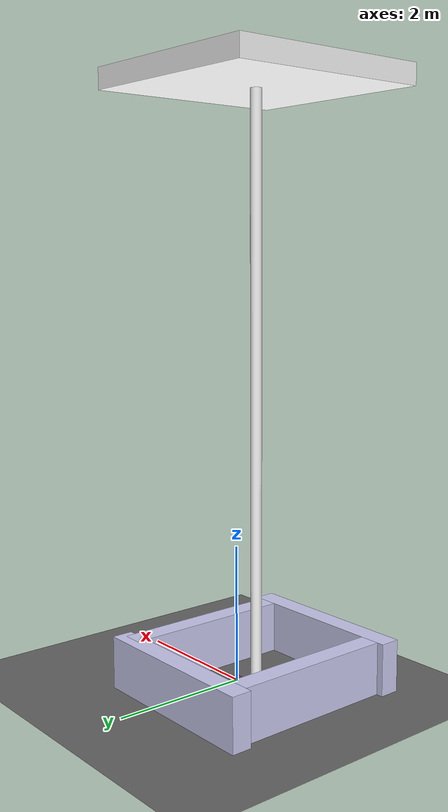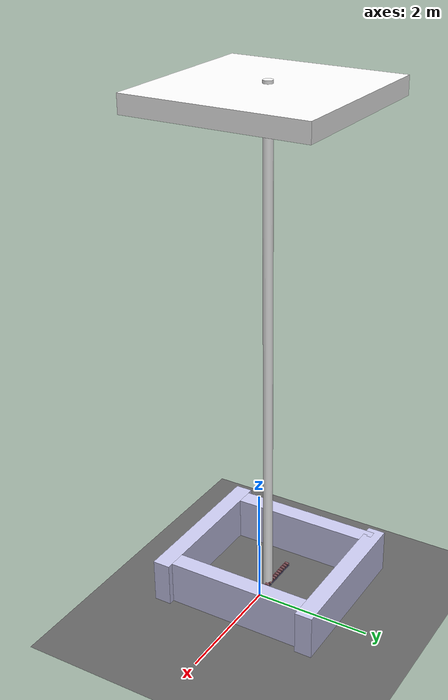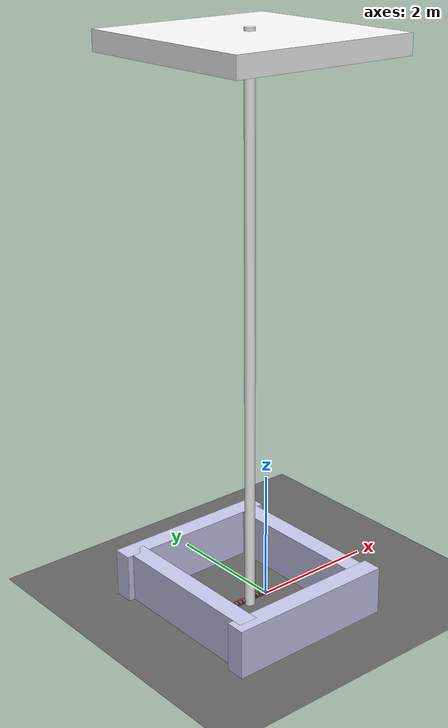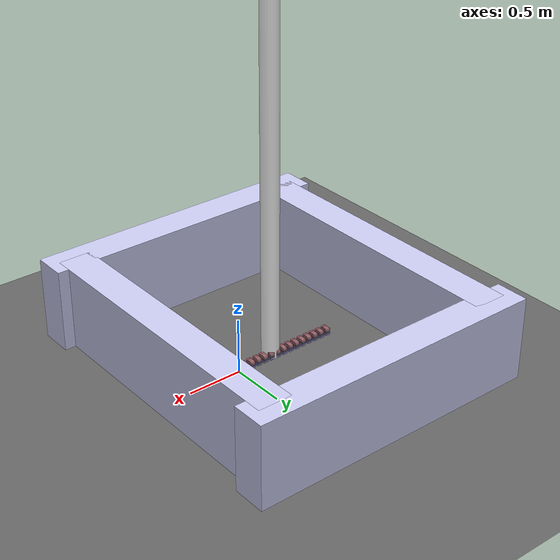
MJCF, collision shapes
<!-- Copyright 2024 Bongsub Song
 doorebong@gmail.com
 -->

 <mujoco model="Horcrux v2 with flat plane">
    <include file="horcrux_p.xml"/>
    <option timestep="0.005"/>
    <size memory="512M"/>

    <!-- up pipe defaults -->
    <default>
        <default class="pvc-visual">
          <geom group="2" type="mesh" contype="0" conaffinity="0"/>
        </default>
        <default class="pvc-collision">
          <geom group="3" type="mesh" priority="2"/>
        </default>
    </default>

    <asset>
        <texture builtin="gradient" height="100" rgb1="1 1 1" rgb2="0 0 0" type="skybox" width="100"/>
        <texture builtin="flat" height="1278" mark="cross" markrgb="1 1 1" name="texgeom" random="0.01" rgb1="0.8 0.6 0.4" rgb2="0.8 0.6 0.4" type="cube" width="127"/>
        <texture builtin="checker" height="100" name="texplane" rgb1="0 0 0" rgb2="0.8 0.8 0.8" type="2d" width="100"/>
        <material name="MatPlane" reflectance="0" shininess="0.1" specular="1" texrepeat="30 30" texture="texplane"/>
        <material name="geom" texture="texgeom" texuniform="true"/>
        <material name="capsule" texture="texgeom" texuniform="true" rgba=".4 .9 .6 1" />
        <material name="ellipsoid" texture="texgeom" texuniform="true" rgba=".4 .6 .9 1" />
        <material name="box" texture="texgeom" texuniform="true" rgba=".4 .9 .9 1" />
        <material name="cylinder" texture="texgeom" texuniform="true" rgba=".8 .6 .8 1" />
        <material name="sphere" texture="texgeom" texuniform="true" rgba=".9 .1 .1 1" />

        <mesh file="./decomposing/PVC_pipe.obj"/>
        <mesh file="./decomposing/PVC_pipe_collision_0.obj"/>
        <mesh file="./decomposing/PVC_pipe_collision_1.obj"/>
        <mesh file="./decomposing/PVC_pipe_collision_2.obj"/>
        <mesh file="./decomposing/PVC_pipe_collision_3.obj"/>
        <mesh file="./decomposing/PVC_pipe_collision_4.obj"/>
        <mesh file="./decomposing/PVC_pipe_collision_5.obj"/>
        <mesh file="./decomposing/PVC_pipe_collision_6.obj"/>
        <mesh file="./decomposing/PVC_pipe_collision_7.obj"/>
        <mesh file="./decomposing/PVC_pipe_collision_8.obj"/>
        <mesh file="./decomposing/PVC_pipe_collision_9.obj"/>
        <mesh file="./decomposing/PVC_pipe_collision_10.obj"/>
    </asset>

<worldbody>
    <geom name="floor" type="plane" size="30 30 .5" priority="2" friction="0.65 0.015 0.01" material="MatPlane" />

    <geom name="wall1" type="box" condim="1" size="1.35 0.15 0.5" rgba="0.8 0.8 0.95 0.6" pos="-0.4 1.35 0.25"/>
    <geom name="wall2" type="box" condim="1" size="1.35 0.15 0.5" rgba="0.8 0.8 0.95 0.6" pos="-0.4 -1.35 0.25"/>
    <geom name="wall3" type="box" condim="1" size="0.15 1.35 0.5" rgba="0.8 0.8 0.95 0.6" pos="0.7 0 0.25"/>
    <geom name="wall4" type="box" condim="1" size="0.15 1.35 0.5" rgba="0.8 0.8 0.95 0.6" pos="-1.5 0 0.25"/>

    <geom name="pipe4climb" type="cylinder" size="0.08 4.5" priority="2" friction="1.2 0.01 0.005" rgba="1 1 1 1" pos="-0.37 -0.05 4.2"/>
    <geom name="pipe4climbtop" type="box" condim="1" size="1.5 1.5 0.15" rgba="1 1 1 1" pos="-0.35 -0.05 8.5"/>

    <body>
        <camera name="pipe_climbing_watcher" mode="fixed" fovy="105" pos="-0.45 1 1.5" euler="-45 0 180"/>
    </body>
</worldbody>

</mujoco>

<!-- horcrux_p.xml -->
<!-- Copyright 2024 Bongsub Song
 doorebong@gmail.com
 -->

<mujoco model="Horcrux v2 body">
<!--    DGIST BRM Horcrux snake robot
        DOF : 20
        Actuators : 14
        Sensors : 30

        각 링크에 FSR 센서가 장착된 뱀로봇 V2 입니다.
    -->
<asset>
<!-- 메시 파일 불러오기 -->
    <mesh name="link_collision" file="./assets/link_collision_mesh.STL"/>

<!-- HEAD 링크 obj 설정 파일들 -->
    <material name="black_medium_gloss_plastic" specular="1.0" shininess="0.099901085" rgba="0.101961 0.101961 0.101961 1.000000"/>
    <material name="black_spray_paint" specular="1.0" shininess="0.001136835" rgba="0.058824 0.058824 0.058824 1.000000"/>
    <material name="brushed_nickel" specular="1.0" shininess="0.006954886" rgba="1.000000 0.960784 0.890196 1.000000"/>
    <material name="color" specular="1.0" shininess="0.005212761999999999" rgba="0.000000 0.368627 0.094118 1.000000"/>
    <material name="color-2" specular="1.0" shininess="0.005212761999999999" rgba="1.000000 1.000000 1.000000 1.000000"/>
    <material name="color-3" specular="1.0" shininess="0.005212761999999999" rgba="0.250980 0.250980 0.250980 1.000000"/>
    <material name="color-4" specular="1.0" shininess="0.005212761999999999" rgba="0.870588 0.709804 0.498039 1.000000"/>
    <material name="color-5" specular="1.0" shininess="0.005212761999999999" rgba="0.749020 0.749020 0.749020 1.000000"/>
    <material name="color-6" specular="1.0" shininess="0.005212761999999999" rgba="0.470588 0.431373 0.274510 1.000000"/>
    <material name="color-7" specular="1.0" shininess="0.005212761999999999" rgba="0.247059 0.247059 0.247059 1.000000"/>
    <material name="color-8" specular="1.0" shininess="0.005212761999999999" rgba="0.929412 0.807843 0.764706 1.000000"/>
    <material name="color-9" specular="1.0" shininess="0.005212761999999999" rgba="0.960784 0.960784 0.964706 1.000000"/>
    <material name="frosted_plastic" specular="1.0" shininess="0.002559057" rgba="0.576471 0.929412 1.000000 1.000000"/>
    <material name="frosted_plastic-2" specular="1.0" shininess="0.002559057" rgba="0.576471 0.929412 1.000000 1.000000"/>
    <material name="frosted_plastic-3" specular="1.0" shininess="0.002559057" rgba="0.576471 0.929412 1.000000 1.000000"/>
    <material name="light_grey_low_gloss_plastic" specular="1.0" shininess="0.001357886" rgba="0.498039 0.498039 0.498039 1.000000"/>
    <material name="matte_rubber" specular="1.0" shininess="0.0012430000000000002" rgba="0.094118 0.078431 0.078431 1.000000"/>
    <material name="satin_finish_aluminum" specular="1.0" shininess="0.003414631" rgba="0.866667 0.909804 1.000000 1.000000"/>
    <material name="satin_finish_aluminum_(Cosmetic_Thread)" specular="1.0" shininess="0.003414631" rgba="0.866667 0.909804 1.000000 1.000000"/>

    <mesh file="./assets/head_0.obj"/>
    <mesh file="./assets/head_1.obj"/>
    <mesh file="./assets/head_2.obj"/>
    <mesh file="./assets/head_3.obj"/>
    <mesh file="./assets/head_4.obj"/>
    <mesh file="./assets/head_5.obj"/>
    <mesh file="./assets/head_6.obj"/>
    <mesh file="./assets/head_7.obj"/>
    <mesh file="./assets/head_8.obj"/>
    <mesh file="./assets/head_9.obj"/>
    <mesh file="./assets/head_10.obj"/>
    <mesh file="./assets/head_11.obj"/>
    <mesh file="./assets/head_12.obj"/>
    <mesh file="./assets/head_13.obj"/>
    <mesh file="./assets/head_14.obj"/>
    <mesh file="./assets/head_15.obj"/>
    <mesh file="./assets/head_16.obj"/>
    <mesh file="./assets/head_17.obj"/>
    <mesh file="./assets/head_18.obj"/>

<!-- Verical 링크 obj 설정 파일들 -->
    <material name="v-color" specular="1.0" shininess="0.005212761999999999" rgba="0.247059 0.247059 0.247059 1.000000"/>
    <material name="v-color-10" specular="1.0" shininess="0.005212761999999999" rgba="0.749020 0.749020 0.749020 1.000000"/>
    <material name="v-color-2" specular="1.0" shininess="0.005212761999999999" rgba="0.929412 0.807843 0.764706 1.000000"/>
    <material name="v-color-3" specular="1.0" shininess="0.005212761999999999" rgba="0.960784 0.960784 0.964706 1.000000"/>
    <material name="v-color-4" specular="1.0" shininess="0.005212761999999999" rgba="0.117647 0.294118 0.031373 1.000000"/>
    <material name="v-color-5" specular="1.0" shininess="0.005212761999999999" rgba="0.470588 0.431373 0.274510 1.000000"/>
    <material name="v-color-7" specular="1.0" shininess="0.005212761999999999" rgba="1.000000 1.000000 1.000000 1.000000"/>
    <material name="v-color-8" specular="1.0" shininess="0.005212761999999999" rgba="0.250980 0.250980 0.250980 1.000000"/>
    <material name="v-color-9" specular="1.0" shininess="0.005212761999999999" rgba="0.870588 0.709804 0.498039 1.000000"/>
    <material name="glossy_rubber" specular="1.0" shininess="0.005212761999999999" rgba="0.298039 0.298039 0.298039 1.000000"/>

    <mesh file="./assets/v-link_0.obj"/>
    <mesh file="./assets/v-link_1.obj"/>
    <mesh file="./assets/v-link_2.obj"/>
    <mesh file="./assets/v-link_3.obj"/>
    <mesh file="./assets/v-link_4.obj"/>
    <mesh file="./assets/v-link_5.obj"/>
    <mesh file="./assets/v-link_6.obj"/>
    <mesh file="./assets/v-link_7.obj"/>
    <mesh file="./assets/v-link_8.obj"/>
    <mesh file="./assets/v-link_9.obj"/>
    <mesh file="./assets/v-link_10.obj"/>
    <mesh file="./assets/v-link_11.obj"/>
    <mesh file="./assets/v-link_12.obj"/>
    <mesh file="./assets/v-link_13.obj"/>
    <mesh file="./assets/v-link_14.obj"/>
    <mesh file="./assets/v-link_15.obj"/>
    <mesh file="./assets/v-link_16.obj"/>
    <mesh file="./assets/v-link_17.obj"/>
    <mesh file="./assets/v-link_18.obj"/>

<!-- Horizon 링크 obj 설정 파일들 -->
    <material name="black_medium_gloss_plastic.001" specular="1.0" shininess="0.099901085" rgba="0.101961 0.101961 0.101961 1.000000"/>
    <material name="black_spray_paint.001" specular="1.0" shininess="0.001136835" rgba="0.058824 0.058824 0.058824 1.000000"/>
    <material name="brushed_nickel.001" specular="1.0" shininess="0.006954886" rgba="1.000000 0.960784 0.890196 1.000000"/>
    <material name="color-2.001" specular="1.0" shininess="0.005212761999999999" rgba="1.000000 1.000000 1.000000 1.000000"/>
    <material name="color-3.001" specular="1.0" shininess="0.005212761999999999" rgba="0.250980 0.250980 0.250980 1.000000"/>
    <material name="color-4.001" specular="1.0" shininess="0.005212761999999999" rgba="0.870588 0.709804 0.498039 1.000000"/>
    <material name="color-5.001" specular="1.0" shininess="0.005212761999999999" rgba="0.749020 0.749020 0.749020 1.000000"/>
    <material name="color-6.001" specular="1.0" shininess="0.005212761999999999" rgba="0.470588 0.431373 0.274510 1.000000"/>
    <material name="color-7.001" specular="1.0" shininess="0.005212761999999999" rgba="0.247059 0.247059 0.247059 1.000000"/>
    <material name="color-8.001" specular="1.0" shininess="0.005212761999999999" rgba="0.929412 0.807843 0.764706 1.000000"/>
    <material name="color-9.001" specular="1.0" shininess="0.005212761999999999" rgba="0.960784 0.960784 0.964706 1.000000"/>
    <material name="color.001" specular="1.0" shininess="0.005212761999999999" rgba="0.117647 0.294118 0.031373 1.000000"/>
    <material name="frosted_plastic-2.001" specular="1.0" shininess="0.002559057" rgba="0.576471 0.929412 1.000000 1.000000"/>
    <material name="frosted_plastic-3.001" specular="1.0" shininess="0.002559057" rgba="0.576471 0.929412 1.000000 1.000000"/>
    <material name="frosted_plastic.001" specular="1.0" shininess="0.002559057" rgba="0.576471 0.929412 1.000000 1.000000"/>
    <material name="glossy_rubber.001" specular="1.0" shininess="0.005212761999999999" rgba="0.298039 0.298039 0.298039 1.000000"/>
    <material name="light_grey_low_gloss_plastic.001" specular="1.0" shininess="0.001357886" rgba="0.498039 0.498039 0.498039 1.000000"/>
    <material name="satin_finish_aluminum.001" specular="1.0" shininess="0.003414631" rgba="0.866667 0.909804 1.000000 1.000000"/>
    <material name="satin_finish_aluminum_(Cosmetic_Thread).001" specular="1.0" shininess="0.003414631" rgba="0.866667 0.909804 1.000000 1.000000"/>

    <mesh file="./assets/h-link_0.obj"/>
    <mesh file="./assets/h-link_1.obj"/>
    <mesh file="./assets/h-link_2.obj"/>
    <mesh file="./assets/h-link_3.obj"/>
    <mesh file="./assets/h-link_4.obj"/>
    <mesh file="./assets/h-link_5.obj"/>
    <mesh file="./assets/h-link_6.obj"/>
    <mesh file="./assets/h-link_7.obj"/>
    <mesh file="./assets/h-link_8.obj"/>
    <mesh file="./assets/h-link_9.obj"/>
    <mesh file="./assets/h-link_10.obj"/>
    <mesh file="./assets/h-link_11.obj"/>
    <mesh file="./assets/h-link_12.obj"/>
    <mesh file="./assets/h-link_13.obj"/>
    <mesh file="./assets/h-link_14.obj"/>
    <mesh file="./assets/h-link_15.obj"/>
    <mesh file="./assets/h-link_16.obj"/>
    <mesh file="./assets/h-link_17.obj"/>
    <mesh file="./assets/h-link_18.obj"/>
</asset>

<!-- 디폴트 설정 -->
<default>
    <!-- Robotis XM430-W250 -->
    <motor ctrlrange="-3 3" ctrllimited="true"/>

    <default class="joint_defaults">
        <joint type="hinge" pos="0.0685 0 0" limited="true" range="-45 45" damping="0.13" armature="0.01" />
    </default>

    <default class="collision-mesh">
        <geom group="3" type="mesh" mesh="link_collision" mass="0.165" condim="4" rgba="0.5 0.5 0.5 0.1" priority="1" friction="0.7 0.015 0.001" euler="90 90 0"/>
    </default>

    <default class="visual">
        <geom group="2" type="mesh" mass="0" contype="0" conaffinity="0"/>
    </default>

    <default class="collision">
        <geom group="3" type="mesh"/>
    </default>
</default>

<visual>
    <map force="0.1" zfar="30"/>
    <rgba haze="0.15 0.25 0.35 1"/>
    <quality shadowsize="4096"/>
    <global offwidth="1280" offheight="1280"/>
</visual>

<!-- 바디 정의 시작 -->
<worldbody>

<body>
    <camera name="ceiling" mode="fixed" fovy="48" pos="-0.5 0 3.5" euler="0 0 0"/>
</body>

<body name="link1" pos="0 0 0.035" euler="0 0 0">
    <freejoint name="root"/>
    <site name="s_tool" pos="0.05 0 0.0" euler="0 0 0" rgba="0.2 0.9 0.3 1"/>
    <site name="s_link1_top" type="box" size="0.021 0.038 0.014" pos="0.016 0 0.018" rgba="0.8 0.1 0.2 0.3"/>
    <site name="s_link1_bot" type="box" size="0.021 0.038 0.014" pos="0.016 0 -0.018" rgba="0.2 0.1 0.8 0.3"/>
    <geom name="collision-link1" class="collision-mesh"/>
    <geom mesh="head_0"  pos="0 0 -0.03125" euler="0 90 90" material="matte_rubber" class="visual"/>
    <geom mesh="head_1"  pos="0 0 -0.03125" euler="0 90 90" material="color-9" class="visual"/>
    <geom mesh="head_2"  pos="0 0 -0.03125" euler="0 90 90" material="color-8" class="visual"/>
    <geom mesh="head_3"  pos="0 0 -0.03125" euler="0 90 90" material="color-7" class="visual"/>
    <geom mesh="head_4"  pos="0 0 -0.03125" euler="0 90 90" material="color-6" class="visual"/>
    <geom mesh="head_5"  pos="0 0 -0.03125" euler="0 90 90" material="color-5" class="visual"/>
    <geom mesh="head_6"  pos="0 0 -0.03125" euler="0 90 90" material="color-4" class="visual"/>
    <geom mesh="head_7"  pos="0 0 -0.03125" euler="0 90 90" material="color-3" class="visual"/>
    <geom mesh="head_8"  pos="0 0 -0.03125" euler="0 90 90" material="color-2" class="visual"/>
    <geom mesh="head_9"  pos="0 0 -0.03125" euler="0 90 90" material="color" class="visual"/>
    <geom mesh="head_10" pos="0 0 -0.03125" euler="0 90 90" material="light_grey_low_gloss_plastic" class="visual"/>
    <geom mesh="head_11" pos="0 0 -0.03125" euler="0 90 90" material="frosted_plastic-3" class="visual"/>
    <geom mesh="head_12" pos="0 0 -0.03125" euler="0 90 90" material="frosted_plastic-2" class="visual"/>
    <geom mesh="head_13" pos="0 0 -0.03125" euler="0 90 90" material="frosted_plastic" class="visual"/>
    <geom mesh="head_14" pos="0 0 -0.03125" euler="0 90 90" material="satin_finish_aluminum_(Cosmetic_Thread)" class="visual"/>
    <geom mesh="head_15" pos="0 0 -0.03125" euler="0 90 90" material="satin_finish_aluminum" class="visual"/>
    <geom mesh="head_16" pos="0 0 -0.03125" euler="0 90 90" material="black_medium_gloss_plastic" class="visual"/>
    <geom mesh="head_17" pos="0 0 -0.03125" euler="0 90 90" material="brushed_nickel" class="visual"/>
    <geom mesh="head_18" pos="0 0 -0.03125" euler="0 90 90" material="black_spray_paint" class="visual"/>
    <body name="link2" pos="-0.0685 0 0" euler="0 0 0">
        <joint class="joint_defaults" name="joint1" axis="0 1 0"/>
        <site name="s_link2_top" type="box" size="0.021 0.038 0.014" pos="0.016 0 0.018" rgba="0.8 0.1 0.2 0.3"/>
        <site name="s_link2_bot" type="box" size="0.021 0.038 0.014" pos="0.016 0 -0.018" rgba="0.2 0.1 0.8 0.3"/>
        <geom name="collision-link2" class="collision-mesh"/>
        <geom mesh="h-link_0"  pos="0 0 -0.03125" euler="0 90 90" material="glossy_rubber" class="visual"/>
        <geom mesh="h-link_1"  pos="0 0 -0.03125" euler="0 90 90" material="v-color-10" class="visual"/>
        <geom mesh="h-link_2"  pos="0 0 -0.03125" euler="0 90 90" material="v-color-9" class="visual"/>
        <geom mesh="h-link_3"  pos="0 0 -0.03125" euler="0 90 90" material="v-color-8" class="visual"/>
        <geom mesh="h-link_4"  pos="0 0 -0.03125" euler="0 90 90" material="v-color-7" class="visual"/>
        <geom mesh="h-link_5"  pos="0 0 -0.03125" euler="0 90 90" material="v-color-5" class="visual"/>
        <geom mesh="h-link_6"  pos="0 0 -0.03125" euler="0 90 90" material="v-color-4" class="visual"/>
        <geom mesh="h-link_7"  pos="0 0 -0.03125" euler="0 90 90" material="v-color-3" class="visual"/>
        <geom mesh="h-link_8"  pos="0 0 -0.03125" euler="0 90 90" material="v-color-2" class="visual"/>
        <geom mesh="h-link_9"  pos="0 0 -0.03125" euler="0 90 90" material="v-color" class="visual"/>
        <geom mesh="h-link_10" pos="0 0 -0.03125" euler="0 90 90" material="light_grey_low_gloss_plastic" class="visual"/>
        <geom mesh="h-link_11" pos="0 0 -0.03125" euler="0 90 90" material="frosted_plastic-3" class="visual"/>
        <geom mesh="h-link_12" pos="0 0 -0.03125" euler="0 90 90" material="frosted_plastic-2" class="visual"/>
        <geom mesh="h-link_13" pos="0 0 -0.03125" euler="0 90 90" material="frosted_plastic" class="visual"/>
        <geom mesh="h-link_14" pos="0 0 -0.03125" euler="0 90 90" material="satin_finish_aluminum_(Cosmetic_Thread)" class="visual"/>
        <geom mesh="h-link_15" pos="0 0 -0.03125" euler="0 90 90" material="satin_finish_aluminum" class="visual"/>
        <geom mesh="h-link_16" pos="0 0 -0.03125" euler="0 90 90" material="black_medium_gloss_plastic" class="visual"/>
        <geom mesh="h-link_17" pos="0 0 -0.03125" euler="0 90 90" material="brushed_nickel" class="visual"/>
        <geom mesh="h-link_18" pos="0 0 -0.03125" euler="0 90 90" material="black_spray_paint" class="visual"/>
        <body name="link3" pos="-0.0685 0 0" euler="0 0 0">
            <joint class="joint_defaults" name="joint2" axis="0 0 1"/>
            <site name="s_link3_top" type="box" size="0.021 0.038 0.014" pos="0.016 0 0.018" rgba="0.8 0.1 0.2 0.3"/>
            <site name="s_link3_bot" type="box" size="0.021 0.038 0.014" pos="0.016 0 -0.018" rgba="0.2 0.1 0.8 0.3"/>
            <geom name="collision-link3" class="collision-mesh"/>
            <geom mesh="v-link_0"  pos="0 0 -0.03125" euler="0 90 90" material="glossy_rubber" class="visual"/>
            <geom mesh="v-link_1"  pos="0 0 -0.03125" euler="0 90 90" material="v-color-10" class="visual"/>
            <geom mesh="v-link_2"  pos="0 0 -0.03125" euler="0 90 90" material="v-color-9" class="visual"/>
            <geom mesh="v-link_3"  pos="0 0 -0.03125" euler="0 90 90" material="v-color-8" class="visual"/>
            <geom mesh="v-link_4"  pos="0 0 -0.03125" euler="0 90 90" material="v-color-7" class="visual"/>
            <geom mesh="v-link_5"  pos="0 0 -0.03125" euler="0 90 90" material="v-color-5" class="visual"/>
            <geom mesh="v-link_6"  pos="0 0 -0.03125" euler="0 90 90" material="v-color-4" class="visual"/>
            <geom mesh="v-link_7"  pos="0 0 -0.03125" euler="0 90 90" material="v-color-3" class="visual"/>
            <geom mesh="v-link_8"  pos="0 0 -0.03125" euler="0 90 90" material="v-color-2" class="visual"/>
            <geom mesh="v-link_9"  pos="0 0 -0.03125" euler="0 90 90" material="v-color" class="visual"/>
            <geom mesh="v-link_10" pos="0 0 -0.03125" euler="0 90 90" material="light_grey_low_gloss_plastic" class="visual"/>
            <geom mesh="v-link_11" pos="0 0 -0.03125" euler="0 90 90" material="frosted_plastic-3" class="visual"/>
            <geom mesh="v-link_12" pos="0 0 -0.03125" euler="0 90 90" material="frosted_plastic-2" class="visual"/>
            <geom mesh="v-link_13" pos="0 0 -0.03125" euler="0 90 90" material="frosted_plastic" class="visual"/>
            <geom mesh="v-link_14" pos="0 0 -0.03125" euler="0 90 90" material="satin_finish_aluminum_(Cosmetic_Thread)" class="visual"/>
            <geom mesh="v-link_15" pos="0 0 -0.03125" euler="0 90 90" material="satin_finish_aluminum" class="visual"/>
            <geom mesh="v-link_16" pos="0 0 -0.03125" euler="0 90 90" material="black_medium_gloss_plastic" class="visual"/>
            <geom mesh="v-link_17" pos="0 0 -0.03125" euler="0 90 90" material="brushed_nickel" class="visual"/>
            <geom mesh="v-link_18" pos="0 0 -0.03125" euler="0 90 90" material="black_spray_paint" class="visual"/>
            <body name="link4" pos="-0.0685 0 0" euler="0 0 0">
                <joint class="joint_defaults" name="joint3" axis="0 1 0"/>
                <site name="s_link4_top" type="box" size="0.021 0.038 0.014" pos="0.016 0 0.018" rgba="0.8 0.1 0.2 0.3"/>
                <site name="s_link4_bot" type="box" size="0.021 0.038 0.014" pos="0.016 0 -0.018" rgba="0.2 0.1 0.8 0.3"/>
                <geom name="collision-link4" class="collision-mesh"/>
                <geom mesh="h-link_0"  pos="0 0 -0.03125" euler="0 90 90" material="glossy_rubber" class="visual"/>
                <geom mesh="h-link_1"  pos="0 0 -0.03125" euler="0 90 90" material="v-color-10" class="visual"/>
                <geom mesh="h-link_2"  pos="0 0 -0.03125" euler="0 90 90" material="v-color-9" class="visual"/>
                <geom mesh="h-link_3"  pos="0 0 -0.03125" euler="0 90 90" material="v-color-8" class="visual"/>
                <geom mesh="h-link_4"  pos="0 0 -0.03125" euler="0 90 90" material="v-color-7" class="visual"/>
                <geom mesh="h-link_5"  pos="0 0 -0.03125" euler="0 90 90" material="v-color-5" class="visual"/>
                <geom mesh="h-link_6"  pos="0 0 -0.03125" euler="0 90 90" material="v-color-4" class="visual"/>
                <geom mesh="h-link_7"  pos="0 0 -0.03125" euler="0 90 90" material="v-color-3" class="visual"/>
                <geom mesh="h-link_8"  pos="0 0 -0.03125" euler="0 90 90" material="v-color-2" class="visual"/>
                <geom mesh="h-link_9"  pos="0 0 -0.03125" euler="0 90 90" material="v-color" class="visual"/>
                <geom mesh="h-link_10" pos="0 0 -0.03125" euler="0 90 90" material="light_grey_low_gloss_plastic" class="visual"/>
                <geom mesh="h-link_11" pos="0 0 -0.03125" euler="0 90 90" material="frosted_plastic-3" class="visual"/>
                <geom mesh="h-link_12" pos="0 0 -0.03125" euler="0 90 90" material="frosted_plastic-2" class="visual"/>
                <geom mesh="h-link_13" pos="0 0 -0.03125" euler="0 90 90" material="frosted_plastic" class="visual"/>
                <geom mesh="h-link_14" pos="0 0 -0.03125" euler="0 90 90" material="satin_finish_aluminum_(Cosmetic_Thread)" class="visual"/>
                <geom mesh="h-link_15" pos="0 0 -0.03125" euler="0 90 90" material="satin_finish_aluminum" class="visual"/>
                <geom mesh="h-link_16" pos="0 0 -0.03125" euler="0 90 90" material="black_medium_gloss_plastic" class="visual"/>
                <geom mesh="h-link_17" pos="0 0 -0.03125" euler="0 90 90" material="brushed_nickel" class="visual"/>
                <geom mesh="h-link_18" pos="0 0 -0.03125" euler="0 90 90" material="black_spray_paint" class="visual"/>
                <body name="link5" pos="-0.0685 0 0" euler="0 0 0">
                    <joint class="joint_defaults" name="joint4" axis="0 0 1"/>
                    <site name="s_link5_top" type="box" size="0.021 0.038 0.014" pos="0.016 0 0.018" rgba="0.8 0.1 0.2 0.3"/>
                    <site name="s_link5_bot" type="box" size="0.021 0.038 0.014" pos="0.016 0 -0.018" rgba="0.2 0.1 0.8 0.3"/>
                    <geom name="collision-link5" class="collision-mesh"/>
                    <geom mesh="v-link_0"  pos="0 0 -0.03125" euler="0 90 90" material="glossy_rubber" class="visual"/>
                    <geom mesh="v-link_1"  pos="0 0 -0.03125" euler="0 90 90" material="v-color-10" class="visual"/>
                    <geom mesh="v-link_2"  pos="0 0 -0.03125" euler="0 90 90" material="v-color-9" class="visual"/>
                    <geom mesh="v-link_3"  pos="0 0 -0.03125" euler="0 90 90" material="v-color-8" class="visual"/>
                    <geom mesh="v-link_4"  pos="0 0 -0.03125" euler="0 90 90" material="v-color-7" class="visual"/>
                    <geom mesh="v-link_5"  pos="0 0 -0.03125" euler="0 90 90" material="v-color-5" class="visual"/>
                    <geom mesh="v-link_6"  pos="0 0 -0.03125" euler="0 90 90" material="v-color-4" class="visual"/>
                    <geom mesh="v-link_7"  pos="0 0 -0.03125" euler="0 90 90" material="v-color-3" class="visual"/>
                    <geom mesh="v-link_8"  pos="0 0 -0.03125" euler="0 90 90" material="v-color-2" class="visual"/>
                    <geom mesh="v-link_9"  pos="0 0 -0.03125" euler="0 90 90" material="v-color" class="visual"/>
                    <geom mesh="v-link_10" pos="0 0 -0.03125" euler="0 90 90" material="light_grey_low_gloss_plastic" class="visual"/>
                    <geom mesh="v-link_11" pos="0 0 -0.03125" euler="0 90 90" material="frosted_plastic-3" class="visual"/>
                    <geom mesh="v-link_12" pos="0 0 -0.03125" euler="0 90 90" material="frosted_plastic-2" class="visual"/>
                    <geom mesh="v-link_13" pos="0 0 -0.03125" euler="0 90 90" material="frosted_plastic" class="visual"/>
                    <geom mesh="v-link_14" pos="0 0 -0.03125" euler="0 90 90" material="satin_finish_aluminum_(Cosmetic_Thread)" class="visual"/>
                    <geom mesh="v-link_15" pos="0 0 -0.03125" euler="0 90 90" material="satin_finish_aluminum" class="visual"/>
                    <geom mesh="v-link_16" pos="0 0 -0.03125" euler="0 90 90" material="black_medium_gloss_plastic" class="visual"/>
                    <geom mesh="v-link_17" pos="0 0 -0.03125" euler="0 90 90" material="brushed_nickel" class="visual"/>
                    <geom mesh="v-link_18" pos="0 0 -0.03125" euler="0 90 90" material="black_spray_paint" class="visual"/>
                    <body name="link6" pos="-0.0685 0 0" euler="0 0 0">
                        <joint class="joint_defaults" name="joint5" axis="0 1 0"/>
                        <site name="s_link6_top" type="box" size="0.021 0.038 0.014" pos="0.016 0 0.018" rgba="0.8 0.1 0.2 0.3"/>
                        <site name="s_link6_bot" type="box" size="0.021 0.038 0.014" pos="0.016 0 -0.018" rgba="0.2 0.1 0.8 0.3"/>
                        <geom name="collision-link6" class="collision-mesh"/>
                        <geom mesh="h-link_0"  pos="0 0 -0.03125" euler="0 90 90" material="glossy_rubber" class="visual"/>
                        <geom mesh="h-link_1"  pos="0 0 -0.03125" euler="0 90 90" material="v-color-10" class="visual"/>
                        <geom mesh="h-link_2"  pos="0 0 -0.03125" euler="0 90 90" material="v-color-9" class="visual"/>
                        <geom mesh="h-link_3"  pos="0 0 -0.03125" euler="0 90 90" material="v-color-8" class="visual"/>
                        <geom mesh="h-link_4"  pos="0 0 -0.03125" euler="0 90 90" material="v-color-7" class="visual"/>
                        <geom mesh="h-link_5"  pos="0 0 -0.03125" euler="0 90 90" material="v-color-5" class="visual"/>
                        <geom mesh="h-link_6"  pos="0 0 -0.03125" euler="0 90 90" material="v-color-4" class="visual"/>
                        <geom mesh="h-link_7"  pos="0 0 -0.03125" euler="0 90 90" material="v-color-3" class="visual"/>
                        <geom mesh="h-link_8"  pos="0 0 -0.03125" euler="0 90 90" material="v-color-2" class="visual"/>
                        <geom mesh="h-link_9"  pos="0 0 -0.03125" euler="0 90 90" material="v-color" class="visual"/>
                        <geom mesh="h-link_10" pos="0 0 -0.03125" euler="0 90 90" material="light_grey_low_gloss_plastic" class="visual"/>
                        <geom mesh="h-link_11" pos="0 0 -0.03125" euler="0 90 90" material="frosted_plastic-3" class="visual"/>
                        <geom mesh="h-link_12" pos="0 0 -0.03125" euler="0 90 90" material="frosted_plastic-2" class="visual"/>
                        <geom mesh="h-link_13" pos="0 0 -0.03125" euler="0 90 90" material="frosted_plastic" class="visual"/>
                        <geom mesh="h-link_14" pos="0 0 -0.03125" euler="0 90 90" material="satin_finish_aluminum_(Cosmetic_Thread)" class="visual"/>
                        <geom mesh="h-link_15" pos="0 0 -0.03125" euler="0 90 90" material="satin_finish_aluminum" class="visual"/>
                        <geom mesh="h-link_16" pos="0 0 -0.03125" euler="0 90 90" material="black_medium_gloss_plastic" class="visual"/>
                        <geom mesh="h-link_17" pos="0 0 -0.03125" euler="0 90 90" material="brushed_nickel" class="visual"/>
                        <geom mesh="h-link_18" pos="0 0 -0.03125" euler="0 90 90" material="black_spray_paint" class="visual"/>
                        <body name="link7" pos="-0.0685 0 0" euler="0 0 0">
                            <joint class="joint_defaults" name="joint6" axis="0 0 1"/>
                            <site name="s_link7_top" type="box" size="0.021 0.038 0.014" pos="0.016 0 0.018" rgba="0.8 0.1 0.2 0.3"/>
                            <site name="s_link7_bot" type="box" size="0.021 0.038 0.014" pos="0.016 0 -0.018" rgba="0.2 0.1 0.8 0.3"/>
                            <geom name="collision-link7" class="collision-mesh"/>
                            <geom mesh="v-link_0"  pos="0 0 -0.03125" euler="0 90 90" material="glossy_rubber" class="visual"/>
                            <geom mesh="v-link_1"  pos="0 0 -0.03125" euler="0 90 90" material="v-color-10" class="visual"/>
                            <geom mesh="v-link_2"  pos="0 0 -0.03125" euler="0 90 90" material="v-color-9" class="visual"/>
                            <geom mesh="v-link_3"  pos="0 0 -0.03125" euler="0 90 90" material="v-color-8" class="visual"/>
                            <geom mesh="v-link_4"  pos="0 0 -0.03125" euler="0 90 90" material="v-color-7" class="visual"/>
                            <geom mesh="v-link_5"  pos="0 0 -0.03125" euler="0 90 90" material="v-color-5" class="visual"/>
                            <geom mesh="v-link_6"  pos="0 0 -0.03125" euler="0 90 90" material="v-color-4" class="visual"/>
                            <geom mesh="v-link_7"  pos="0 0 -0.03125" euler="0 90 90" material="v-color-3" class="visual"/>
                            <geom mesh="v-link_8"  pos="0 0 -0.03125" euler="0 90 90" material="v-color-2" class="visual"/>
                            <geom mesh="v-link_9"  pos="0 0 -0.03125" euler="0 90 90" material="v-color" class="visual"/>
                            <geom mesh="v-link_10" pos="0 0 -0.03125" euler="0 90 90" material="light_grey_low_gloss_plastic" class="visual"/>
                            <geom mesh="v-link_11" pos="0 0 -0.03125" euler="0 90 90" material="frosted_plastic-3" class="visual"/>
                            <geom mesh="v-link_12" pos="0 0 -0.03125" euler="0 90 90" material="frosted_plastic-2" class="visual"/>
                            <geom mesh="v-link_13" pos="0 0 -0.03125" euler="0 90 90" material="frosted_plastic" class="visual"/>
                            <geom mesh="v-link_14" pos="0 0 -0.03125" euler="0 90 90" material="satin_finish_aluminum_(Cosmetic_Thread)" class="visual"/>
                            <geom mesh="v-link_15" pos="0 0 -0.03125" euler="0 90 90" material="satin_finish_aluminum" class="visual"/>
                            <geom mesh="v-link_16" pos="0 0 -0.03125" euler="0 90 90" material="black_medium_gloss_plastic" class="visual"/>
                            <geom mesh="v-link_17" pos="0 0 -0.03125" euler="0 90 90" material="brushed_nickel" class="visual"/>
                            <geom mesh="v-link_18" pos="0 0 -0.03125" euler="0 90 90" material="black_spray_paint" class="visual"/>
                            <body name="link8" pos="-0.0685 0 0" euler="0 0 0">
                                <joint class="joint_defaults" name="joint7" axis="0 1 0"/>
                                <site name="s_link8_top" type="box" size="0.021 0.038 0.014" pos="0.016 0 0.018" rgba="0.8 0.1 0.2 0.3"/>
                                <site name="s_link8_bot" type="box" size="0.021 0.038 0.014" pos="0.016 0 -0.018" rgba="0.2 0.1 0.8 0.3"/>
                                <geom name="collision-link8" class="collision-mesh"/>
                                <geom mesh="h-link_0"  pos="0 0 -0.03125" euler="0 90 90" material="glossy_rubber" class="visual"/>
                                <geom mesh="h-link_1"  pos="0 0 -0.03125" euler="0 90 90" material="v-color-10" class="visual"/>
                                <geom mesh="h-link_2"  pos="0 0 -0.03125" euler="0 90 90" material="v-color-9" class="visual"/>
                                <geom mesh="h-link_3"  pos="0 0 -0.03125" euler="0 90 90" material="v-color-8" class="visual"/>
                                <geom mesh="h-link_4"  pos="0 0 -0.03125" euler="0 90 90" material="v-color-7" class="visual"/>
                                <geom mesh="h-link_5"  pos="0 0 -0.03125" euler="0 90 90" material="v-color-5" class="visual"/>
                                <geom mesh="h-link_6"  pos="0 0 -0.03125" euler="0 90 90" material="v-color-4" class="visual"/>
                                <geom mesh="h-link_7"  pos="0 0 -0.03125" euler="0 90 90" material="v-color-3" class="visual"/>
                                <geom mesh="h-link_8"  pos="0 0 -0.03125" euler="0 90 90" material="v-color-2" class="visual"/>
                                <geom mesh="h-link_9"  pos="0 0 -0.03125" euler="0 90 90" material="v-color" class="visual"/>
                                <geom mesh="h-link_10" pos="0 0 -0.03125" euler="0 90 90" material="light_grey_low_gloss_plastic" class="visual"/>
                                <geom mesh="h-link_11" pos="0 0 -0.03125" euler="0 90 90" material="frosted_plastic-3" class="visual"/>
                                <geom mesh="h-link_12" pos="0 0 -0.03125" euler="0 90 90" material="frosted_plastic-2" class="visual"/>
                                <geom mesh="h-link_13" pos="0 0 -0.03125" euler="0 90 90" material="frosted_plastic" class="visual"/>
                                <geom mesh="h-link_14" pos="0 0 -0.03125" euler="0 90 90" material="satin_finish_aluminum_(Cosmetic_Thread)" class="visual"/>
                                <geom mesh="h-link_15" pos="0 0 -0.03125" euler="0 90 90" material="satin_finish_aluminum" class="visual"/>
                                <geom mesh="h-link_16" pos="0 0 -0.03125" euler="0 90 90" material="black_medium_gloss_plastic" class="visual"/>
                                <geom mesh="h-link_17" pos="0 0 -0.03125" euler="0 90 90" material="brushed_nickel" class="visual"/>
                                <geom mesh="h-link_18" pos="0 0 -0.03125" euler="0 90 90" material="black_spray_paint" class="visual"/>
                                <body name="link9" pos="-0.0685 0 0" euler="0 0 0">
                                    <joint class="joint_defaults" name="joint8" axis="0 0 1"/>
                                    <site name="s_link9_top" type="box" size="0.021 0.038 0.014" pos="0.016 0 0.018" rgba="0.8 0.1 0.2 0.3"/>
                                    <site name="s_link9_bot" type="box" size="0.021 0.038 0.014" pos="0.016 0 -0.018" rgba="0.2 0.1 0.8 0.3"/>
                                    <geom name="collision-link9" class="collision-mesh"/>
                                    <geom mesh="v-link_0"  pos="0 0 -0.03125" euler="0 90 90" material="glossy_rubber" class="visual"/>
                                    <geom mesh="v-link_1"  pos="0 0 -0.03125" euler="0 90 90" material="v-color-10" class="visual"/>
                                    <geom mesh="v-link_2"  pos="0 0 -0.03125" euler="0 90 90" material="v-color-9" class="visual"/>
                                    <geom mesh="v-link_3"  pos="0 0 -0.03125" euler="0 90 90" material="v-color-8" class="visual"/>
                                    <geom mesh="v-link_4"  pos="0 0 -0.03125" euler="0 90 90" material="v-color-7" class="visual"/>
                                    <geom mesh="v-link_5"  pos="0 0 -0.03125" euler="0 90 90" material="v-color-5" class="visual"/>
                                    <geom mesh="v-link_6"  pos="0 0 -0.03125" euler="0 90 90" material="v-color-4" class="visual"/>
                                    <geom mesh="v-link_7"  pos="0 0 -0.03125" euler="0 90 90" material="v-color-3" class="visual"/>
                                    <geom mesh="v-link_8"  pos="0 0 -0.03125" euler="0 90 90" material="v-color-2" class="visual"/>
                                    <geom mesh="v-link_9"  pos="0 0 -0.03125" euler="0 90 90" material="v-color" class="visual"/>
                                    <geom mesh="v-link_10" pos="0 0 -0.03125" euler="0 90 90" material="light_grey_low_gloss_plastic" class="visual"/>
                                    <geom mesh="v-link_11" pos="0 0 -0.03125" euler="0 90 90" material="frosted_plastic-3" class="visual"/>
                                    <geom mesh="v-link_12" pos="0 0 -0.03125" euler="0 90 90" material="frosted_plastic-2" class="visual"/>
                                    <geom mesh="v-link_13" pos="0 0 -0.03125" euler="0 90 90" material="frosted_plastic" class="visual"/>
                                    <geom mesh="v-link_14" pos="0 0 -0.03125" euler="0 90 90" material="satin_finish_aluminum_(Cosmetic_Thread)" class="visual"/>
                                    <geom mesh="v-link_15" pos="0 0 -0.03125" euler="0 90 90" material="satin_finish_aluminum" class="visual"/>
                                    <geom mesh="v-link_16" pos="0 0 -0.03125" euler="0 90 90" material="black_medium_gloss_plastic" class="visual"/>
                                    <geom mesh="v-link_17" pos="0 0 -0.03125" euler="0 90 90" material="brushed_nickel" class="visual"/>
                                    <geom mesh="v-link_18" pos="0 0 -0.03125" euler="0 90 90" material="black_spray_paint" class="visual"/>
                                    <body name="link10" pos="-0.0685 0 0" euler="0 0 0">
                                        <joint class="joint_defaults" name="joint9" axis="0 1 0"/>
                                        <site name="s_link10_top" type="box" size="0.021 0.038 0.014" pos="0.016 0 0.018" rgba="0.8 0.1 0.2 0.3"/>
                                        <site name="s_link10_bot" type="box" size="0.021 0.038 0.014" pos="0.016 0 -0.018" rgba="0.2 0.1 0.8 0.3"/>
                                        <geom name="collision-link10" class="collision-mesh"/>
                                        <geom mesh="h-link_0"  pos="0 0 -0.03125" euler="0 90 90" material="glossy_rubber" class="visual"/>
                                        <geom mesh="h-link_1"  pos="0 0 -0.03125" euler="0 90 90" material="v-color-10" class="visual"/>
                                        <geom mesh="h-link_2"  pos="0 0 -0.03125" euler="0 90 90" material="v-color-9" class="visual"/>
                                        <geom mesh="h-link_3"  pos="0 0 -0.03125" euler="0 90 90" material="v-color-8" class="visual"/>
                                        <geom mesh="h-link_4"  pos="0 0 -0.03125" euler="0 90 90" material="v-color-7" class="visual"/>
                                        <geom mesh="h-link_5"  pos="0 0 -0.03125" euler="0 90 90" material="v-color-5" class="visual"/>
                                        <geom mesh="h-link_6"  pos="0 0 -0.03125" euler="0 90 90" material="v-color-4" class="visual"/>
                                        <geom mesh="h-link_7"  pos="0 0 -0.03125" euler="0 90 90" material="v-color-3" class="visual"/>
                                        <geom mesh="h-link_8"  pos="0 0 -0.03125" euler="0 90 90" material="v-color-2" class="visual"/>
                                        <geom mesh="h-link_9"  pos="0 0 -0.03125" euler="0 90 90" material="v-color" class="visual"/>
                                        <geom mesh="h-link_10" pos="0 0 -0.03125" euler="0 90 90" material="light_grey_low_gloss_plastic" class="visual"/>
                                        <geom mesh="h-link_11" pos="0 0 -0.03125" euler="0 90 90" material="frosted_plastic-3" class="visual"/>
                                        <geom mesh="h-link_12" pos="0 0 -0.03125" euler="0 90 90" material="frosted_plastic-2" class="visual"/>
                                        <geom mesh="h-link_13" pos="0 0 -0.03125" euler="0 90 90" material="frosted_plastic" class="visual"/>
                                        <geom mesh="h-link_14" pos="0 0 -0.03125" euler="0 90 90" material="satin_finish_aluminum_(Cosmetic_Thread)" class="visual"/>
                                        <geom mesh="h-link_15" pos="0 0 -0.03125" euler="0 90 90" material="satin_finish_aluminum" class="visual"/>
                                        <geom mesh="h-link_16" pos="0 0 -0.03125" euler="0 90 90" material="black_medium_gloss_plastic" class="visual"/>
                                        <geom mesh="h-link_17" pos="0 0 -0.03125" euler="0 90 90" material="brushed_nickel" class="visual"/>
                                        <geom mesh="h-link_18" pos="0 0 -0.03125" euler="0 90 90" material="black_spray_paint" class="visual"/>
                                        <body name="link11" pos="-0.0685 0 0" euler="0 0 0">
                                            <joint class="joint_defaults" name="joint10" axis="0 0 1"/>
                                            <site name="s_link11_top" type="box" size="0.021 0.038 0.014" pos="0.016 0 0.018" rgba="0.8 0.1 0.2 0.3"/>
                                            <site name="s_link11_bot" type="box" size="0.021 0.038 0.014" pos="0.016 0 -0.018" rgba="0.2 0.1 0.8 0.3"/>
                                            <geom name="collision-link11" class="collision-mesh"/>
                                            <geom mesh="v-link_0"  pos="0 0 -0.03125" euler="0 90 90" material="glossy_rubber" class="visual"/>
                                            <geom mesh="v-link_1"  pos="0 0 -0.03125" euler="0 90 90" material="v-color-10" class="visual"/>
                                            <geom mesh="v-link_2"  pos="0 0 -0.03125" euler="0 90 90" material="v-color-9" class="visual"/>
                                            <geom mesh="v-link_3"  pos="0 0 -0.03125" euler="0 90 90" material="v-color-8" class="visual"/>
                                            <geom mesh="v-link_4"  pos="0 0 -0.03125" euler="0 90 90" material="v-color-7" class="visual"/>
                                            <geom mesh="v-link_5"  pos="0 0 -0.03125" euler="0 90 90" material="v-color-5" class="visual"/>
                                            <geom mesh="v-link_6"  pos="0 0 -0.03125" euler="0 90 90" material="v-color-4" class="visual"/>
                                            <geom mesh="v-link_7"  pos="0 0 -0.03125" euler="0 90 90" material="v-color-3" class="visual"/>
                                            <geom mesh="v-link_8"  pos="0 0 -0.03125" euler="0 90 90" material="v-color-2" class="visual"/>
                                            <geom mesh="v-link_9"  pos="0 0 -0.03125" euler="0 90 90" material="v-color" class="visual"/>
                                            <geom mesh="v-link_10" pos="0 0 -0.03125" euler="0 90 90" material="light_grey_low_gloss_plastic" class="visual"/>
                                            <geom mesh="v-link_11" pos="0 0 -0.03125" euler="0 90 90" material="frosted_plastic-3" class="visual"/>
                                            <geom mesh="v-link_12" pos="0 0 -0.03125" euler="0 90 90" material="frosted_plastic-2" class="visual"/>
                                            <geom mesh="v-link_13" pos="0 0 -0.03125" euler="0 90 90" material="frosted_plastic" class="visual"/>
                                            <geom mesh="v-link_14" pos="0 0 -0.03125" euler="0 90 90" material="satin_finish_aluminum_(Cosmetic_Thread)" class="visual"/>
                                            <geom mesh="v-link_15" pos="0 0 -0.03125" euler="0 90 90" material="satin_finish_aluminum" class="visual"/>
                                            <geom mesh="v-link_16" pos="0 0 -0.03125" euler="0 90 90" material="black_medium_gloss_plastic" class="visual"/>
                                            <geom mesh="v-link_17" pos="0 0 -0.03125" euler="0 90 90" material="brushed_nickel" class="visual"/>
                                            <geom mesh="v-link_18" pos="0 0 -0.03125" euler="0 90 90" material="black_spray_paint" class="visual"/>
                                            <body name="link12" pos="-0.0685 0 0" euler="0 0 0">
                                                <joint class="joint_defaults" name="joint11" axis="0 1 0"/>
                                                <site name="s_link12_top" type="box" size="0.021 0.038 0.014" pos="0.016 0 0.018" rgba="0.8 0.1 0.2 0.3"/>
                                                <site name="s_link12_bot" type="box" size="0.021 0.038 0.014" pos="0.016 0 -0.018" rgba="0.2 0.1 0.8 0.3"/>
                                                <geom name="collision-link12" class="collision-mesh"/>
                                                <geom mesh="h-link_0"  pos="0 0 -0.03125" euler="0 90 90" material="glossy_rubber" class="visual"/>
                                                <geom mesh="h-link_1"  pos="0 0 -0.03125" euler="0 90 90" material="v-color-10" class="visual"/>
                                                <geom mesh="h-link_2"  pos="0 0 -0.03125" euler="0 90 90" material="v-color-9" class="visual"/>
                                                <geom mesh="h-link_3"  pos="0 0 -0.03125" euler="0 90 90" material="v-color-8" class="visual"/>
                                                <geom mesh="h-link_4"  pos="0 0 -0.03125" euler="0 90 90" material="v-color-7" class="visual"/>
                                                <geom mesh="h-link_5"  pos="0 0 -0.03125" euler="0 90 90" material="v-color-5" class="visual"/>
                                                <geom mesh="h-link_6"  pos="0 0 -0.03125" euler="0 90 90" material="v-color-4" class="visual"/>
                                                <geom mesh="h-link_7"  pos="0 0 -0.03125" euler="0 90 90" material="v-color-3" class="visual"/>
                                                <geom mesh="h-link_8"  pos="0 0 -0.03125" euler="0 90 90" material="v-color-2" class="visual"/>
                                                <geom mesh="h-link_9"  pos="0 0 -0.03125" euler="0 90 90" material="v-color" class="visual"/>
                                                <geom mesh="h-link_10" pos="0 0 -0.03125" euler="0 90 90" material="light_grey_low_gloss_plastic" class="visual"/>
                                                <geom mesh="h-link_11" pos="0 0 -0.03125" euler="0 90 90" material="frosted_plastic-3" class="visual"/>
                                                <geom mesh="h-link_12" pos="0 0 -0.03125" euler="0 90 90" material="frosted_plastic-2" class="visual"/>
                                                <geom mesh="h-link_13" pos="0 0 -0.03125" euler="0 90 90" material="frosted_plastic" class="visual"/>
                                                <geom mesh="h-link_14" pos="0 0 -0.03125" euler="0 90 90" material="satin_finish_aluminum_(Cosmetic_Thread)" class="visual"/>
                                                <geom mesh="h-link_15" pos="0 0 -0.03125" euler="0 90 90" material="satin_finish_aluminum" class="visual"/>
                                                <geom mesh="h-link_16" pos="0 0 -0.03125" euler="0 90 90" material="black_medium_gloss_plastic" class="visual"/>
                                                <geom mesh="h-link_17" pos="0 0 -0.03125" euler="0 90 90" material="brushed_nickel" class="visual"/>
                                                <geom mesh="h-link_18" pos="0 0 -0.03125" euler="0 90 90" material="black_spray_paint" class="visual"/>
                                                <body name="link13" pos="-0.0685 0 0" euler="0 0 0">
                                                    <joint class="joint_defaults" name="joint12" axis="0 0 1"/>
                                                    <site name="s_link13_top" type="box" size="0.021 0.038 0.014" pos="0.016 0 0.018" rgba="0.8 0.1 0.2 0.3"/>
                                                    <site name="s_link13_bot" type="box" size="0.021 0.038 0.014" pos="0.016 0 -0.018" rgba="0.2 0.1 0.8 0.3"/>
                                                    <geom name="collision-link13" class="collision-mesh"/>
                                                    <geom mesh="v-link_0"  pos="0 0 -0.03125" euler="0 90 90" material="glossy_rubber" class="visual"/>
                                                    <geom mesh="v-link_1"  pos="0 0 -0.03125" euler="0 90 90" material="v-color-10" class="visual"/>
                                                    <geom mesh="v-link_2"  pos="0 0 -0.03125" euler="0 90 90" material="v-color-9" class="visual"/>
                                                    <geom mesh="v-link_3"  pos="0 0 -0.03125" euler="0 90 90" material="v-color-8" class="visual"/>
                                                    <geom mesh="v-link_4"  pos="0 0 -0.03125" euler="0 90 90" material="v-color-7" class="visual"/>
                                                    <geom mesh="v-link_5"  pos="0 0 -0.03125" euler="0 90 90" material="v-color-5" class="visual"/>
                                                    <geom mesh="v-link_6"  pos="0 0 -0.03125" euler="0 90 90" material="v-color-4" class="visual"/>
                                                    <geom mesh="v-link_7"  pos="0 0 -0.03125" euler="0 90 90" material="v-color-3" class="visual"/>
                                                    <geom mesh="v-link_8"  pos="0 0 -0.03125" euler="0 90 90" material="v-color-2" class="visual"/>
                                                    <geom mesh="v-link_9"  pos="0 0 -0.03125" euler="0 90 90" material="v-color" class="visual"/>
                                                    <geom mesh="v-link_10" pos="0 0 -0.03125" euler="0 90 90" material="light_grey_low_gloss_plastic" class="visual"/>
                                                    <geom mesh="v-link_11" pos="0 0 -0.03125" euler="0 90 90" material="frosted_plastic-3" class="visual"/>
                                                    <geom mesh="v-link_12" pos="0 0 -0.03125" euler="0 90 90" material="frosted_plastic-2" class="visual"/>
                                                    <geom mesh="v-link_13" pos="0 0 -0.03125" euler="0 90 90" material="frosted_plastic" class="visual"/>
                                                    <geom mesh="v-link_14" pos="0 0 -0.03125" euler="0 90 90" material="satin_finish_aluminum_(Cosmetic_Thread)" class="visual"/>
                                                    <geom mesh="v-link_15" pos="0 0 -0.03125" euler="0 90 90" material="satin_finish_aluminum" class="visual"/>
                                                    <geom mesh="v-link_16" pos="0 0 -0.03125" euler="0 90 90" material="black_medium_gloss_plastic" class="visual"/>
                                                    <geom mesh="v-link_17" pos="0 0 -0.03125" euler="0 90 90" material="brushed_nickel" class="visual"/>
                                                    <geom mesh="v-link_18" pos="0 0 -0.03125" euler="0 90 90" material="black_spray_paint" class="visual"/>
                                                    <body name="link14" pos="-0.0685 0 0" euler="0 0 0">
                                                        <joint class="joint_defaults" name="joint13" axis="0 1 0"/>
                                                        <site name="s_link14_top" type="box" size="0.021 0.038 0.014" pos="0.016 0 0.018" rgba="0.8 0.1 0.2 0.3"/>
                                                        <site name="s_link14_bot" type="box" size="0.021 0.038 0.014" pos="0.016 0 -0.018" rgba="0.2 0.1 0.8 0.3"/>
                                                        <geom name="collision-link14" class="collision-mesh"/>
                                                        <geom mesh="h-link_0"  pos="0 0 -0.03125" euler="0 90 90" material="glossy_rubber" class="visual"/>
                                                        <geom mesh="h-link_1"  pos="0 0 -0.03125" euler="0 90 90" material="v-color-10" class="visual"/>
                                                        <geom mesh="h-link_2"  pos="0 0 -0.03125" euler="0 90 90" material="v-color-9" class="visual"/>
                                                        <geom mesh="h-link_3"  pos="0 0 -0.03125" euler="0 90 90" material="v-color-8" class="visual"/>
                                                        <geom mesh="h-link_4"  pos="0 0 -0.03125" euler="0 90 90" material="v-color-7" class="visual"/>
                                                        <geom mesh="h-link_5"  pos="0 0 -0.03125" euler="0 90 90" material="v-color-5" class="visual"/>
                                                        <geom mesh="h-link_6"  pos="0 0 -0.03125" euler="0 90 90" material="v-color-4" class="visual"/>
                                                        <geom mesh="h-link_7"  pos="0 0 -0.03125" euler="0 90 90" material="v-color-3" class="visual"/>
                                                        <geom mesh="h-link_8"  pos="0 0 -0.03125" euler="0 90 90" material="v-color-2" class="visual"/>
                                                        <geom mesh="h-link_9"  pos="0 0 -0.03125" euler="0 90 90" material="v-color" class="visual"/>
                                                        <geom mesh="h-link_10" pos="0 0 -0.03125" euler="0 90 90" material="light_grey_low_gloss_plastic" class="visual"/>
                                                        <geom mesh="h-link_11" pos="0 0 -0.03125" euler="0 90 90" material="frosted_plastic-3" class="visual"/>
                                                        <geom mesh="h-link_12" pos="0 0 -0.03125" euler="0 90 90" material="frosted_plastic-2" class="visual"/>
                                                        <geom mesh="h-link_13" pos="0 0 -0.03125" euler="0 90 90" material="frosted_plastic" class="visual"/>
                                                        <geom mesh="h-link_14" pos="0 0 -0.03125" euler="0 90 90" material="satin_finish_aluminum_(Cosmetic_Thread)" class="visual"/>
                                                        <geom mesh="h-link_15" pos="0 0 -0.03125" euler="0 90 90" material="satin_finish_aluminum" class="visual"/>
                                                        <geom mesh="h-link_16" pos="0 0 -0.03125" euler="0 90 90" material="black_medium_gloss_plastic" class="visual"/>
                                                        <geom mesh="h-link_17" pos="0 0 -0.03125" euler="0 90 90" material="brushed_nickel" class="visual"/>
                                                        <geom mesh="h-link_18" pos="0 0 -0.03125" euler="0 90 90" material="black_spray_paint" class="visual"/>
                                                        <body name="link15" pos="-0.0685 0 0" euler="0 0 0">
                                                            <joint class="joint_defaults" name="joint14" axis="0 0 1"/>
                                                            <site name="s_link15_top" type="box" size="0.021 0.038 0.014" pos="0.016 0 0.018" rgba="0.8 0.1 0.2 0.3"/>
                                                            <site name="s_link15_bot" type="box" size="0.021 0.038 0.014" pos="0.016 0 -0.018" rgba="0.2 0.1 0.8 0.3"/>
                                                            <geom name="collision-link15" class="collision-mesh"/>
                                                            <geom mesh="v-link_0"  pos="0 0 -0.03125" euler="0 90 90" material="glossy_rubber" class="visual"/>
                                                            <geom mesh="v-link_1"  pos="0 0 -0.03125" euler="0 90 90" material="v-color-10" class="visual"/>
                                                            <geom mesh="v-link_2"  pos="0 0 -0.03125" euler="0 90 90" material="v-color-9" class="visual"/>
                                                            <geom mesh="v-link_3"  pos="0 0 -0.03125" euler="0 90 90" material="v-color-8" class="visual"/>
                                                            <geom mesh="v-link_4"  pos="0 0 -0.03125" euler="0 90 90" material="v-color-7" class="visual"/>
                                                            <geom mesh="v-link_5"  pos="0 0 -0.03125" euler="0 90 90" material="v-color-5" class="visual"/>
                                                            <geom mesh="v-link_6"  pos="0 0 -0.03125" euler="0 90 90" material="v-color-4" class="visual"/>
                                                            <geom mesh="v-link_7"  pos="0 0 -0.03125" euler="0 90 90" material="v-color-3" class="visual"/>
                                                            <geom mesh="v-link_8"  pos="0 0 -0.03125" euler="0 90 90" material="v-color-2" class="visual"/>
                                                            <geom mesh="v-link_9"  pos="0 0 -0.03125" euler="0 90 90" material="v-color" class="visual"/>
                                                            <geom mesh="v-link_10" pos="0 0 -0.03125" euler="0 90 90" material="light_grey_low_gloss_plastic" class="visual"/>
                                                            <geom mesh="v-link_11" pos="0 0 -0.03125" euler="0 90 90" material="frosted_plastic-3" class="visual"/>
                                                            <geom mesh="v-link_12" pos="0 0 -0.03125" euler="0 90 90" material="frosted_plastic-2" class="visual"/>
                                                            <geom mesh="v-link_13" pos="0 0 -0.03125" euler="0 90 90" material="frosted_plastic" class="visual"/>
                                                            <geom mesh="v-link_14" pos="0 0 -0.03125" euler="0 90 90" material="satin_finish_aluminum_(Cosmetic_Thread)" class="visual"/>
                                                            <geom mesh="v-link_15" pos="0 0 -0.03125" euler="0 90 90" material="satin_finish_aluminum" class="visual"/>
                                                            <geom mesh="v-link_16" pos="0 0 -0.03125" euler="0 90 90" material="black_medium_gloss_plastic" class="visual"/>
                                                            <geom mesh="v-link_17" pos="0 0 -0.03125" euler="0 90 90" material="brushed_nickel" class="visual"/>
                                                            <geom mesh="v-link_18" pos="0 0 -0.03125" euler="0 90 90" material="black_spray_paint" class="visual"/>
                                                        </body>
                                                    </body>
                                                </body>
                                            </body>
                                        </body>
                                    </body>
                                </body>
                            </body>
                        </body>
                    </body>
                </body>
            </body>
        </body>
    </body>
    <body>
        <camera name="com" mode="track" fovy="45" pos="-2 0 1.2" euler="0 -50 -90"/>
    </body>
</body>

</worldbody>

<!-- friction="tangential normal" name="collision-link" -->

<actuator>
    <motor name="motor_1"  ctrllimited="true" ctrlrange="-3.0 3.0" gear="1" joint="joint1"/>
    <motor name="motor_2"  ctrllimited="true" ctrlrange="-3.0 3.0" gear="1" joint="joint2"/>
    <motor name="motor_3"  ctrllimited="true" ctrlrange="-3.0 3.0" gear="1" joint="joint3"/>
    <motor name="motor_4"  ctrllimited="true" ctrlrange="-3.0 3.0" gear="1" joint="joint4"/>
    <motor name="motor_5"  ctrllimited="true" ctrlrange="-3.0 3.0" gear="1" joint="joint5"/>
    <motor name="motor_6"  ctrllimited="true" ctrlrange="-3.0 3.0" gear="1" joint="joint6"/>
    <motor name="motor_7"  ctrllimited="true" ctrlrange="-3.0 3.0" gear="1" joint="joint7"/>
    <motor name="motor_8"  ctrllimited="true" ctrlrange="-3.0 3.0" gear="1" joint="joint8"/>
    <motor name="motor_9"  ctrllimited="true" ctrlrange="-3.0 3.0" gear="1" joint="joint9"/>
    <motor name="motor_10" ctrllimited="true" ctrlrange="-3.0 3.0" gear="1" joint="joint10"/>
    <motor name="motor_11" ctrllimited="true" ctrlrange="-3.0 3.0" gear="1" joint="joint11"/>
    <motor name="motor_12" ctrllimited="true" ctrlrange="-3.0 3.0" gear="1" joint="joint12"/>
    <motor name="motor_13" ctrllimited="true" ctrlrange="-3.0 3.0" gear="1" joint="joint13"/>
    <motor name="motor_14" ctrllimited="true" ctrlrange="-3.0 3.0" gear="1" joint="joint14"/>
</actuator>

<sensor>
    <jointpos name="pos_joint1"  joint="joint1" />
    <jointpos name="pos_joint2"  joint="joint2" />
    <jointpos name="pos_joint3"  joint="joint3" />
    <jointpos name="pos_joint4"  joint="joint4" />
    <jointpos name="pos_joint5"  joint="joint5" />
    <jointpos name="pos_joint6"  joint="joint6" />
    <jointpos name="pos_joint7"  joint="joint7" />
    <jointpos name="pos_joint8"  joint="joint8" />
    <jointpos name="pos_joint9"  joint="joint9" />
    <jointpos name="pos_joint10" joint="joint10"/>
    <jointpos name="pos_joint11" joint="joint11"/>
    <jointpos name="pos_joint12" joint="joint12"/>
    <jointpos name="pos_joint13" joint="joint13"/>
    <jointpos name="pos_joint14" joint="joint14"/>

    <jointvel name="vel_joint1"  joint="joint1" />
    <jointvel name="vel_joint2"  joint="joint2" />
    <jointvel name="vel_joint3"  joint="joint3" />
    <jointvel name="vel_joint4"  joint="joint4" />
    <jointvel name="vel_joint5"  joint="joint5" />
    <jointvel name="vel_joint6"  joint="joint6" />
    <jointvel name="vel_joint7"  joint="joint7" />
    <jointvel name="vel_joint8"  joint="joint8" />
    <jointvel name="vel_joint9"  joint="joint9" />
    <jointvel name="vel_joint10" joint="joint10"/>
    <jointvel name="vel_joint11" joint="joint11"/>
    <jointvel name="vel_joint12" joint="joint12"/>
    <jointvel name="vel_joint13" joint="joint13"/>
    <jointvel name="vel_joint14" joint="joint14"/>

    <actuatorfrc name="tor_joint1" actuator="motor_1"/>
    <actuatorfrc name="tor_joint2" actuator="motor_2"/>
    <actuatorfrc name="tor_joint3" actuator="motor_3"/>
    <actuatorfrc name="tor_joint4" actuator="motor_4"/>
    <actuatorfrc name="tor_joint5" actuator="motor_5"/>
    <actuatorfrc name="tor_joint6" actuator="motor_6"/>
    <actuatorfrc name="tor_joint7" actuator="motor_7"/>
    <actuatorfrc name="tor_joint8" actuator="motor_8"/>
    <actuatorfrc name="tor_joint9" actuator="motor_9"/>
    <actuatorfrc name="tor_joint10" actuator="motor_10"/>
    <actuatorfrc name="tor_joint11" actuator="motor_11"/>
    <actuatorfrc name="tor_joint12" actuator="motor_12"/>
    <actuatorfrc name="tor_joint13" actuator="motor_13"/>
    <actuatorfrc name="tor_joint14" actuator="motor_14"/>

    <touch name="top_link1" site="s_link1_top"/>
    <touch name="top_link2" site="s_link2_top"/>
    <touch name="top_link3" site="s_link3_top"/>
    <touch name="top_link4" site="s_link4_top"/>
    <touch name="top_link5" site="s_link5_top"/>
    <touch name="top_link6" site="s_link6_top"/>
    <touch name="top_link7" site="s_link7_top"/>
    <touch name="top_link8" site="s_link8_top"/>
    <touch name="top_link9" site="s_link9_top"/>
    <touch name="top_link10" site="s_link10_top"/>
    <touch name="top_link11" site="s_link11_top"/>
    <touch name="top_link12" site="s_link12_top"/>
    <touch name="top_link13" site="s_link13_top"/>
    <touch name="top_link14" site="s_link14_top"/>

    <touch name="bot_link1" site="s_link1_bot"/>
    <touch name="bot_link2" site="s_link2_bot"/>
    <touch name="bot_link3" site="s_link3_bot"/>
    <touch name="bot_link4" site="s_link4_bot"/>
    <touch name="bot_link5" site="s_link5_bot"/>
    <touch name="bot_link6" site="s_link6_bot"/>
    <touch name="bot_link7" site="s_link7_bot"/>
    <touch name="bot_link8" site="s_link8_bot"/>
    <touch name="bot_link9" site="s_link9_bot"/>
    <touch name="bot_link10" site="s_link10_bot"/>
    <touch name="bot_link11" site="s_link11_bot"/>
    <touch name="bot_link12" site="s_link12_bot"/>
    <touch name="bot_link13" site="s_link13_bot"/>
    <touch name="bot_link14" site="s_link14_bot"/>

    <framequat name="head_quat" objtype="site" objname="s_tool"/>
    <gyro name="head_angvel" site="s_tool"/>
    <accelerometer name="head_linacc" site="s_tool"/>

</sensor>

</mujoco>
